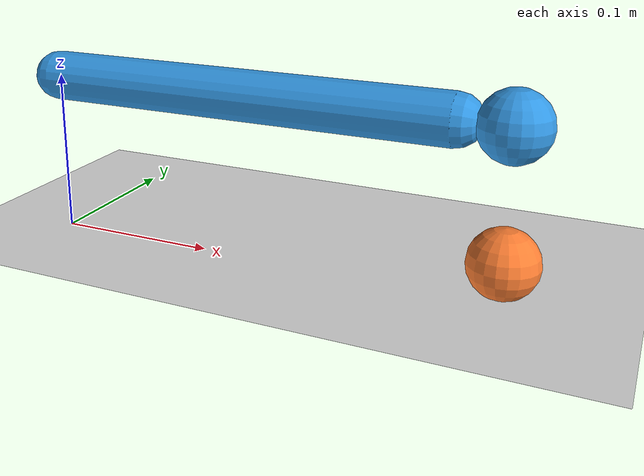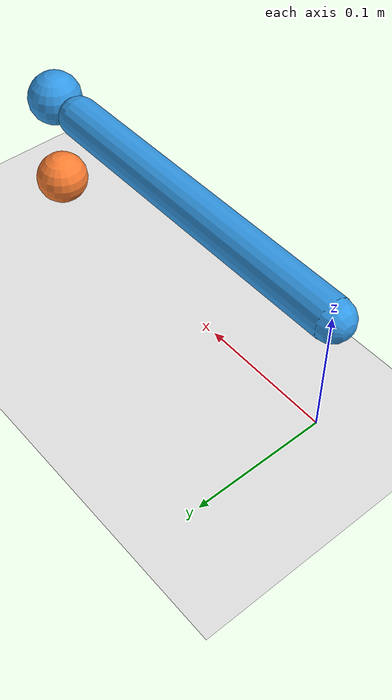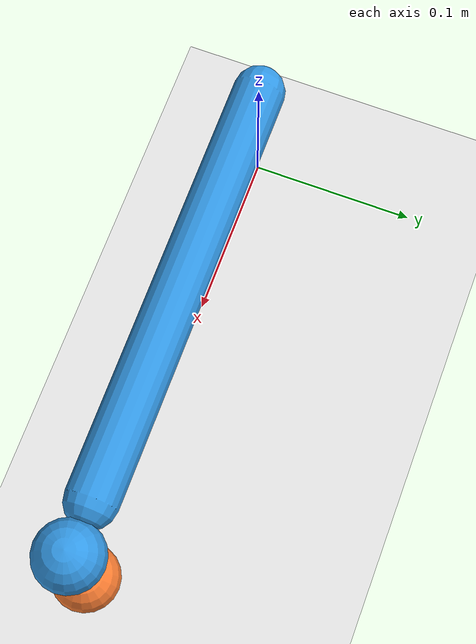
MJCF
<mujoco model="torsion-launcher-fixed">
  <option timestep="0.0002" gravity="0 0 -9.81"/>

  <default>
    <geom friction="0 0 0"/>
  </default>

  <worldbody>
    <!-- Name your floor so contact pairs can reference it -->
    <geom name="floor" type="plane" size="3 3 0.1" rgba="0.9 0.9 0.9 1"/>

    <!-- ✅ Ball is a TOP-LEVEL body with a freejoint -->
    <body name="ball" pos="0.28 0 0.025">
      <freejoint/>
      <geom name="ball_geom" type="sphere" size="0.02" density="1500" rgba="1 0.5 0.2 1"/>
    </body>

    <!-- Arm assembly (no freejoint here) -->
    <body name="base" pos="0 0 0.1">
      <body name="arm" pos="0 0 0">
        <joint name="arm_hinge" type="hinge" axis="0 0 1"
               range="-1.57 1.57" springref="0" stiffness="1200" damping="1"/>
        <geom type="capsule" fromto="0 0 0  0.25 0 0" size="0.015" rgba="0.2 0.6 0.9 1"/>
        <geom name="paddle" type="sphere" pos="0.28 0 0" size="0.02" rgba="0.2 0.6 0.9 1"/>
      </body>
    </body>
  </worldbody>

  <!-- Make ball-floor collision "bouncy" -->
  <contact>
    <pair geom1="ball_geom" geom2="floor"
          friction="0 0 0"
          solref="-15000 -0.0"
          solimp="0.95 0.995 5e-5"/>
  </contact>

  <!-- Preload the arm only; do NOT include freejoint coords unless you know the qpos order -->
  <keyframe>
    <!-- qpos sets arm_hinge only (one DoF), safer to avoid ordering confusion -->
    <key name="cocked" qpos="-0.9"/>
  </keyframe>
</mujoco>
